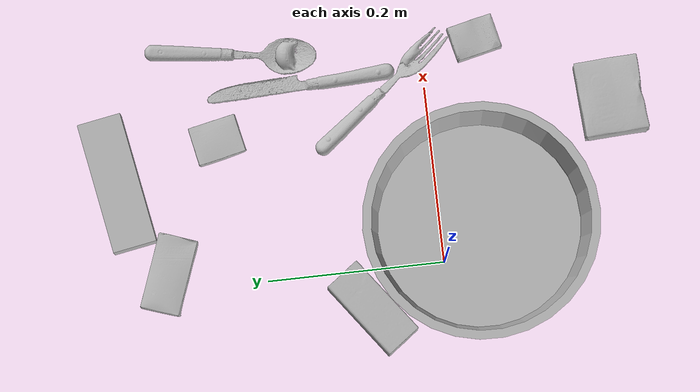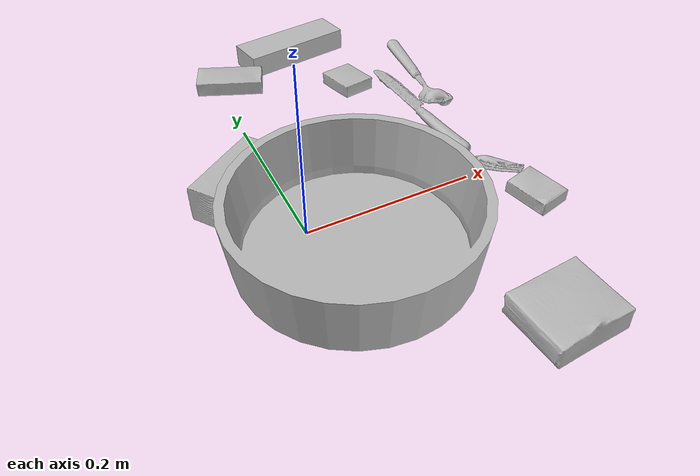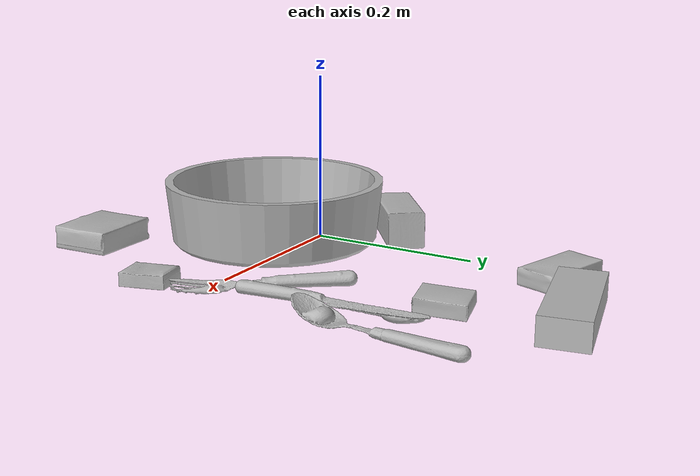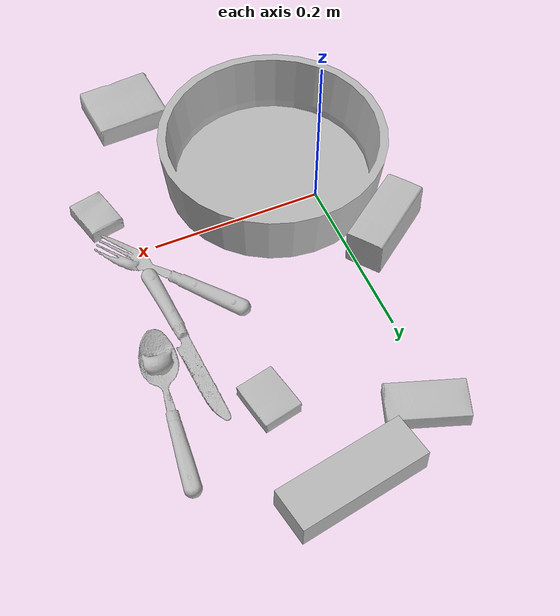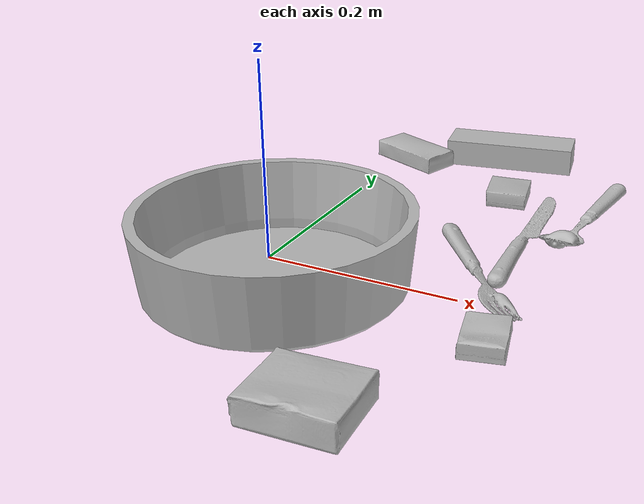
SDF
<sdf version="1.4">
  <world name="default">
    <light name="light1" type="point">
      <pose>0 0 1 0 0 0</pose>
      <diffuse>3 3 3 1</diffuse>
      <specular>3 3 3 1</specular>
    </light>
    <light name="light2" type="point">
      <pose>0 0.5 2 0 0 0</pose>
      <diffuse>1 1 1 1</diffuse>
      <specular>1 1 1 1</specular>
    </light>
    <light name="light3" type="point">
      <pose>0 0.5 2 0 0 0</pose>
      <diffuse>3 3 3 1</diffuse>
      <specular>3 3 3 1</specular>
    </light>
    <scene>
      <ambient>0.7 0.7 0.7</ambient>
    </scene>
    <model name="box11">
      <link name="link_box11">
        <collision name="default">
          <geometry>
            <mesh>
              <uri>model://sugar_box/collision_meshes/collision.obj</uri>
              <scale>0.5 0.5 0.5</scale>
            </mesh>
          </geometry>
          <surface>
            <friction>
              <ode>
                <mu>0.5</mu>
                <mu2>0.5</mu2>
              </ode>
            </friction>
          <contact>
        <ode>
            <max_vel>0</max_vel>
            <min_depth>0.0001</min_depth>
            <kp>1e8</kp>
        </ode>
    </contact></surface>
        </collision>
        <visual name="default">
          <geometry>
            <mesh>
              <uri>model://sugar_box/visual_meshes/visual.dae</uri>
              <scale>0.5 0.5 0.5</scale>
            </mesh>
          </geometry>
        </visual>
        <inertial>
          <mass>0.0727815181016922</mass>
          <pose>0.0005171863595023751 1.924554817378521e-05 -0.00018182402709499002 -0.0004046263004245651 0.001050663405794887 0.002615379021776999</pose>
          <inertia>
            <ixx>1.5160335e-05</ixx>
            <iyy>4.900132e-05</iyy>
            <izz>5.8660433e-05</izz>
            <ixy>0</ixy>
            <ixz>0</ixz>
            <iyz>0</iyz>
          </inertia>
        </inertial>
      </link>
      <pose>0.01908978261053562 0.309573233127594 0.011399299837648869 0.0007751878420327461 -0.023433164996500812 2.7888300570262254</pose>
    </model>
    <model name="box12">
      <link name="link_box12">
        <collision name="default">
          <geometry>
            <mesh>
              <uri>model://gelatin_box/collision_meshes/collision.obj</uri>
              <scale>1.0 1.0 1.0</scale>
            </mesh>
          </geometry>
          <surface>
            <friction>
              <ode>
                <mu>0.5</mu>
                <mu2>0.5</mu2>
              </ode>
            </friction>
          <contact>
        <ode>
            <max_vel>0</max_vel>
            <min_depth>0.0001</min_depth>
            <kp>1e8</kp>
        </ode>
    </contact></surface>
        </collision>
        <visual name="default">
          <geometry>
            <mesh>
              <uri>model://gelatin_box/visual_meshes/visual.dae</uri>
              <scale>1.0 1.0 1.0</scale>
            </mesh>
          </geometry>
        </visual>
        <inertial>
          <mass>0.2761145234107971</mass>
          <pose>0.000431961816502735 0.00011156871187267825 -0.0003640321083366871 -0.0010503719804291966 -0.004755819155973465 0.01644055947187314</pose>
          <inertia>
            <ixx>0.00019491432</ixx>
            <iyy>0.00013922628</iyy>
            <izz>0.00029670302</izz>
            <ixy>0</ixy>
            <ixz>0</ixz>
            <iyz>0</iyz>
          </inertia>
        </inertial>
      </link>
      <pose>0.16370859742164612 -0.20774328708648682 0.015168309211730957 0.005596375056157655 -0.007303376742417061 -1.5213802429025836</pose>
    </model>
    <model name="box13">
      <link name="link_box13">
        <collision name="default">
          <geometry>
            <mesh>
              <uri>model://jenga/collision_meshes/collision.obj</uri>
              <scale>1.0 1.0 1.0</scale>
            </mesh>
          </geometry>
          <surface>
            <friction>
              <ode>
                <mu>0.5</mu>
                <mu2>0.5</mu2>
              </ode>
            </friction>
          <contact>
        <ode>
            <max_vel>0</max_vel>
            <min_depth>0.0001</min_depth>
            <kp>1e8</kp>
        </ode>
    </contact></surface>
        </collision>
        <visual name="default">
          <geometry>
            <mesh>
              <uri>model://jenga/visual_meshes/visual.dae</uri>
              <scale>1.0 1.0 1.0</scale>
            </mesh>
          </geometry>
        </visual>
        <inertial>
          <mass>0.30891793966293335</mass>
          <pose>-2.502855807051674e-07 -0.0001025000965455547 -4.0923401684267446e-05 0.0 -7.34215461761844e-07 0.0</pose>
          <inertia>
            <ixx>8.548509e-05</ixx>
            <iyy>0.00057924463</iyy>
            <izz>0.0006183929</izz>
            <ixy>0</ixy>
            <ixz>0</ixz>
            <iyz>0</iyz>
          </inertia>
        </inertial>
      </link>
      <pose>0.12711535394191742 0.35700157284736633 0.014999998733401299 1.937849571721832e-08 7.976728344295788e-09 0.1752637347199597</pose>
    </model>
    <model name="box21">
      <link name="link_box21">
        <collision name="default">
          <geometry>
            <mesh>
              <uri>model://pudding_box/collision_meshes/collision.obj</uri>
              <scale>0.5 0.5 0.5</scale>
            </mesh>
          </geometry>
          <surface>
            <friction>
              <ode>
                <mu>0.5</mu>
                <mu2>0.5</mu2>
              </ode>
            </friction>
          <contact>
        <ode>
            <max_vel>0</max_vel>
            <min_depth>0.0001</min_depth>
            <kp>1e8</kp>
        </ode>
    </contact></surface>
        </collision>
        <visual name="default">
          <geometry>
            <mesh>
              <uri>model://pudding_box/visual_meshes/visual.dae</uri>
              <scale>0.5 0.5 0.5</scale>
            </mesh>
          </geometry>
        </visual>
        <inertial>
          <mass>0.049023520201444626</mass>
          <pose>0.0002447411243338138 0.00040339428232982755 -0.0002594413817860186 0.005213100395594636 -0.006603798704538055 0.020079825164231697</pose>
          <inertia>
            <ixx>1.3854642e-05</ixx>
            <iyy>9.321502e-06</iyy>
            <izz>2.046e-05</izz>
            <ixy>0</ixy>
            <ixz>0</ixz>
            <iyz>0</iyz>
          </inertia>
        </inertial>
      </link>
      <pose>0.16466741263866425 0.24018621444702148 0.009862900711596012 0.022348662860070378 -0.011391685602937702 -2.937805734502184</pose>
    </model>
    <model name="box22">
      <link name="link_box22">
        <collision name="default">
          <geometry>
            <mesh>
              <uri>model://wood_block/collision_meshes/collision.obj</uri>
              <scale>0.5 0.5 0.5</scale>
            </mesh>
          </geometry>
          <surface>
            <friction>
              <ode>
                <mu>0.5</mu>
                <mu2>0.5</mu2>
              </ode>
            </friction>
          <contact>
        <ode>
            <max_vel>0</max_vel>
            <min_depth>0.0001</min_depth>
            <kp>1e8</kp>
        </ode>
    </contact></surface>
        </collision>
        <visual name="default">
          <geometry>
            <mesh>
              <uri>model://wood_block/visual_meshes/visual.dae</uri>
              <scale>0.5 0.5 0.5</scale>
            </mesh>
          </geometry>
        </visual>
        <inertial>
          <mass>0.3074011206626892</mass>
          <pose>-2.9066577553749084e-06 -0.000285404734313488 0.00013204291462898254 -0.05220975528717129 -0.005192695583989696 -0.0068613793241849635</pose>
          <inertia>
            <ixx>0.00010283729</ixx>
            <iyy>0.00032486304</iyy>
            <izz>0.0003236479</izz>
            <ixy>0</ixy>
            <ixz>0</ixz>
            <iyz>0</iyz>
          </inertia>
        </inertial>
      </link>
      <pose>-0.04505661502480507 0.08627655357122421 0.022479282692074776 -0.01179994064279076 0.007164123435792231 -2.5026445670598148</pose>
    </model>
    <model name="box23">
      <link name="link_box23">
        <collision name="default">
          <geometry>
            <mesh>
              <uri>model://cracker_box/collision_meshes/collision.obj</uri>
              <scale>0.25 0.25 0.25</scale>
            </mesh>
          </geometry>
          <surface>
            <friction>
              <ode>
                <mu>0.5</mu>
                <mu2>0.5</mu2>
              </ode>
            </friction>
          <contact>
        <ode>
            <max_vel>0</max_vel>
            <min_depth>0.0001</min_depth>
            <kp>1e8</kp>
        </ode>
    </contact></surface>
        </collision>
        <visual name="default">
          <geometry>
            <mesh>
              <uri>model://cracker_box/visual_meshes/visual.dae</uri>
              <scale>0.25 0.25 0.25</scale>
            </mesh>
          </geometry>
        </visual>
        <inertial>
          <mass>0.04833315312862396</mass>
          <pose>0.00023660357692278922 6.358561950037256e-05 -0.00042573834070935845 -0.0003162077466025917 -0.011106490531569568 0.002546795235651085</pose>
          <inertia>
            <ixx>7.683624e-06</ixx>
            <iyy>1.268717e-05</iyy>
            <izz>1.8105757e-05</izz>
            <ixy>0</ixy>
            <ixz>0</ixz>
            <iyz>0</iyz>
          </inertia>
        </inertial>
      </link>
      <pose>0.24917466938495636 -0.06201968342065811 0.009120449423789978 -0.011788110111564085 -0.0073671671806766845 1.7949628361005665</pose>
    </model>
    <model name="plate1">
      <link name="link_plate1">
        <collision name="default">
          <geometry>
            <mesh>
              <uri>model://pan_tefal/collision_meshes/collision.obj</uri>
              <scale>1.0 1.0 1.0</scale>
            </mesh>
          </geometry>
          <surface>
            <friction>
              <ode>
                <mu>0.5</mu>
                <mu2>0.5</mu2>
              </ode>
            </friction>
          <contact>
        <ode>
            <max_vel>0</max_vel>
            <min_depth>0.0001</min_depth>
            <kp>1e8</kp>
        </ode>
    </contact></surface>
        </collision>
        <visual name="default">
          <geometry>
            <mesh>
              <uri>model://pan_tefal/visual_meshes/visual.dae</uri>
              <scale>1.0 1.0 1.0</scale>
            </mesh>
          </geometry>
        </visual>
        <inertial>
          <mass>1.5598481893539429</mass>
          <pose>-0.0001800245518097654 3.279111842857674e-05 -0.008514934219419956 0.0008190275877392404 -0.0003301333888364595 -0.33185859522575717</pose>
          <inertia>
            <ixx>0.010767555</ixx>
            <iyy>0.010836974</iyy>
            <izz>0.019820997</izz>
            <ixy>0</ixy>
            <ixz>0</ixz>
            <iyz>0</iyz>
          </inertia>
        </inertial>
      </link>
      <pose>0.03619856387376785 -0.043588787317276 0.03804999962449074 5.0019823600214015e-09 -3.7223921917326816e-08 1.9672466195727476</pose>
    </model>
    <model name="silverware1">
      <link name="link_silverware1">
        <collision name="default">
          <geometry>
            <mesh>
              <uri>model://fork/collision_meshes/collision.obj</uri>
              <scale>1.0 1.0 1.0</scale>
            </mesh>
          </geometry>
          <surface>
            <friction>
              <ode>
                <mu>0.5</mu>
                <mu2>0.5</mu2>
              </ode>
            </friction>
          <contact>
        <ode>
            <max_vel>0</max_vel>
            <min_depth>0.0001</min_depth>
            <kp>1e8</kp>
        </ode>
    </contact></surface>
        </collision>
        <visual name="default">
          <geometry>
            <mesh>
              <uri>model://fork/visual_meshes/visual.dae</uri>
              <scale>1.0 1.0 1.0</scale>
            </mesh>
          </geometry>
        </visual>
        <inertial>
          <mass>0.024598950520157814</mass>
          <pose>-0.029570043087005615 0.0004658824182115495 0.0003218861820641905 -0.013552328184634912 -0.010977839901754499 0.014453902526732686</pose>
          <inertia>
            <ixx>8.623325e-07</ixx>
            <iyy>6.422079e-05</iyy>
            <izz>6.460647e-05</izz>
            <ixy>0</ixy>
            <ixz>0</ixz>
            <iyz>0</iyz>
          </inertia>
        </inertial>
      </link>
      <pose>0.19846820831298828 0.05046706646680832 0.005702396389096975 -0.17981444692406826 0.025070499736155757 -0.9138476767698956</pose>
    </model>
    <model name="silverware2">
      <link name="link_silverware2">
        <collision name="default">
          <geometry>
            <mesh>
              <uri>model://knife/collision_meshes/collision.obj</uri>
              <scale>1.0 1.0 1.0</scale>
            </mesh>
          </geometry>
          <surface>
            <friction>
              <ode>
                <mu>0.5</mu>
                <mu2>0.5</mu2>
              </ode>
            </friction>
          <contact>
        <ode>
            <max_vel>0</max_vel>
            <min_depth>0.0001</min_depth>
            <kp>1e8</kp>
        </ode>
    </contact></surface>
        </collision>
        <visual name="default">
          <geometry>
            <mesh>
              <uri>model://knife/visual_meshes/visual.dae</uri>
              <scale>1.0 1.0 1.0</scale>
            </mesh>
          </geometry>
        </visual>
        <inertial>
          <mass>0.03473280370235443</mass>
          <pose>-0.02378525584936142 0.0015275126788765192 5.062021955382079e-05 0.0730594717304457 0.017248417183571667 -0.007409821049452296</pose>
          <inertia>
            <ixx>9.858578e-07</ixx>
            <iyy>0.00013343782</iyy>
            <izz>0.00013375531</izz>
            <ixy>0</ixy>
            <ixz>0</ixz>
            <iyz>0</iyz>
          </inertia>
        </inertial>
      </link>
      <pose>0.21927396953105927 0.13936808705329895 0.007946518249809742 -0.023885932470486797 -0.014542404665487344 1.6130817947399352</pose>
    </model>
    <model name="silverware3">
      <link name="link_silverware3">
        <collision name="default">
          <geometry>
            <mesh>
              <uri>model://spoon/collision_meshes/collision.obj</uri>
              <scale>1.0 1.0 1.0</scale>
            </mesh>
          </geometry>
          <surface>
            <friction>
              <ode>
                <mu>0.5</mu>
                <mu2>0.5</mu2>
              </ode>
            </friction>
          <contact>
        <ode>
            <max_vel>0</max_vel>
            <min_depth>0.0001</min_depth>
            <kp>1e8</kp>
        </ode>
    </contact></surface>
        </collision>
        <visual name="default">
          <geometry>
            <mesh>
              <uri>model://spoon/visual_meshes/visual.dae</uri>
              <scale>1.0 1.0 1.0</scale>
            </mesh>
          </geometry>
        </visual>
        <inertial>
          <mass>0.02618301659822464</mass>
          <pose>-0.0055263168178498745 -0.00160341733135283 -0.0007271658978424966 0.035216710647368914 -0.039065848798616645 0.0061506127138874515</pose>
          <inertia>
            <ixx>1.4563418e-06</ixx>
            <iyy>9.96255e-05</iyy>
            <izz>0.000100343714</izz>
            <ixy>0</ixy>
            <ixz>0</ixz>
            <iyz>0</iyz>
          </inertia>
        </inertial>
      </link>
      <pose>0.2626303434371948 0.2134731411933899 0.008385256864130497 0.006729401455347139 0.026892931406343565 -1.7053381413354711</pose>
    </model>
  <physics type="ode">
      <max_contacts>50</max_contacts>
      <ode>
        <solver>
          <type>quick</type>
          <iters>75</iters>
        </solver>
        <constraints>
          <contact_max_correcting_vel>0</contact_max_correcting_vel>
          <contact_surface_layer>0</contact_surface_layer>
        </constraints>
      </ode>
    </physics></world>
</sdf>
